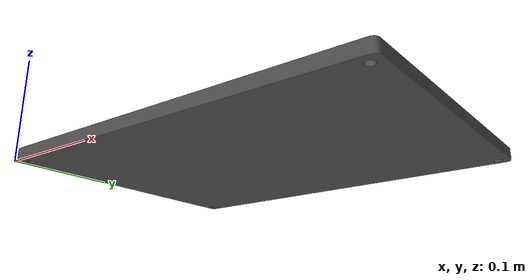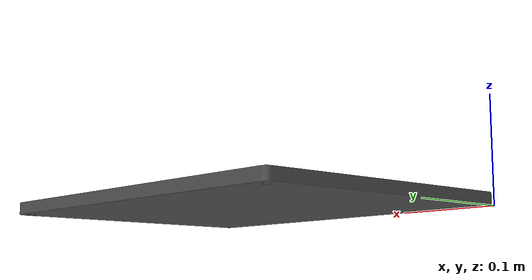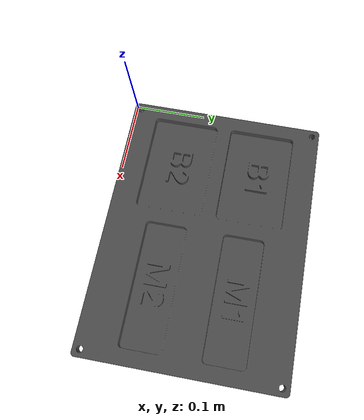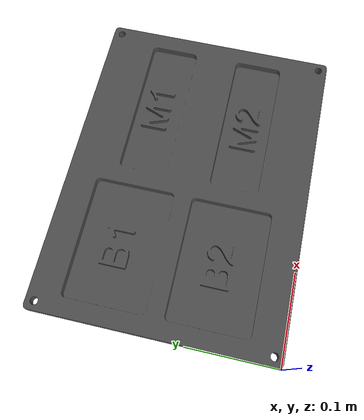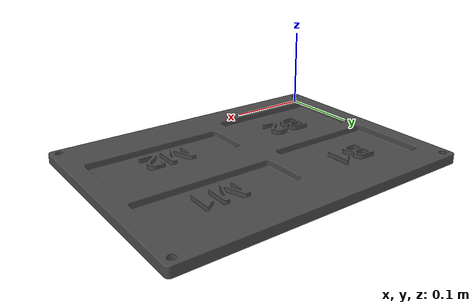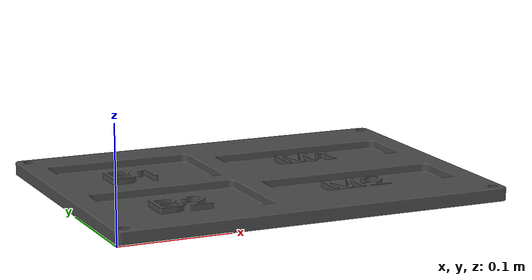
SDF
<?xml version="1.0"?>
<sdf version="1.8">
  <model name="Input_Station">
    <static>true</static>
    <pose>0 0 0 0 0 0</pose>

    <link name="input_station">

        <!-- visual mesh-->
        <visual name="station_visual">
          <geometry>
            <mesh>
              <uri>model://Input_Station/meshes/Input_Station.stl</uri>
              <scale>0.001 0.001 0.001</scale>
            </mesh>
          </geometry>
          <material>
              <ambient>0.2 0.2 0.2 1</ambient>
              <diffuse>0.3 0.3 0.3 1</diffuse>
              <specular>0.05 0.05 0.05 1</specular>
          </material>
        </visual>

        <!--Simple collision -->
        <collision name="station_collision">
          <pose>0 0 0 0 0 0</pose>
          <geometry>
              <box>
                <size>0.3 0.3 0.03</size>
              </box>
          </geometry>
        </collision>
    </link>
  </model>
</sdf>
